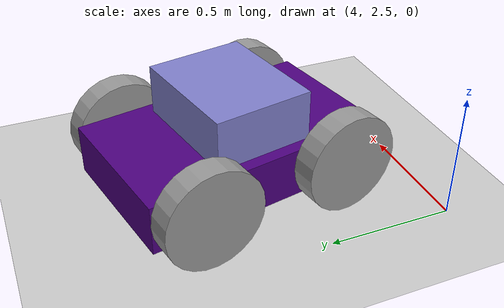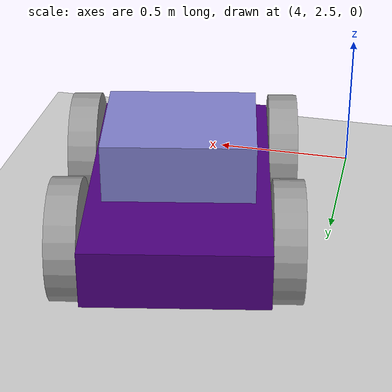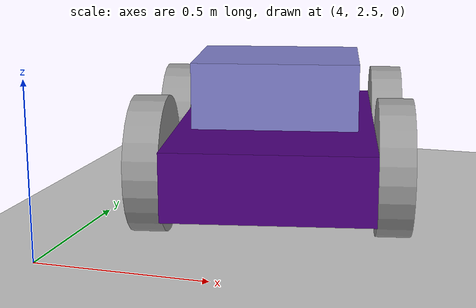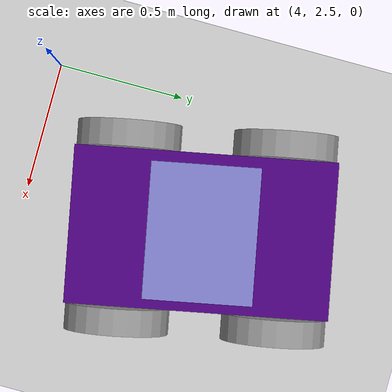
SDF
<sdf version="1.7">
 <world name="default">
  <model name="ground_plane">
   <static>1</static>
   <link name="link_gp">
    <collision name="collision">
     <geometry><plane><normal>0 0 1</normal><size>100 100</size></plane></geometry>
     <surface>
      <contact><collide_bitmask>65535</collide_bitmask></contact>
      <friction><ode><mu>100</mu><mu2>50</mu2></ode></friction>
     </surface>
    </collision>
    <visual name="visual">
     <cast_shadows>0</cast_shadows>
     <geometry><plane><normal>0 0 1</normal><size>100 100</size></plane></geometry>
     <material>
      <script><uri>file://media/materials/scripts/gazebo.material</uri><name>Gazebo/Grey</name></script>
     </material>
    </visual>
   </link>
  </model>
  <model name="Robot_mh_clone">
   <link name="link_0">
    <inertial>
     <mass>1</mass>
     <inertia>
      <ixx>0.166667</ixx>
      <ixy>0</ixy>
      <ixz>0</ixz>
      <iyy>0.166667</iyy>
      <iyz>0</iyz>
      <izz>0.166667</izz>
     </inertia>
    </inertial>
    <pose>0.584798 0.160779 -0.013333 0 -0 0</pose>
    <visual name="visual">
     <geometry><box><size>1 0.6 0.2</size></box></geometry>
     <material>
      <lighting>1</lighting>
      <script><uri>file://media/materials/scripts/gazebo.material</uri><name>Gazebo/Grey</name></script>
      <shader type="pixel"><normal_map>__default__</normal_map></shader>
      <ambient>0.3 0 0.5 1</ambient>
      <diffuse>0.7 0.7 0.7 1</diffuse>
      <specular>0.01 0.01 0.01 1</specular>
      <emissive>0 0 0 1</emissive>
     </material>
    </visual>
    <collision name="collision">
     <geometry><box><size>1 0.6 0.2</size></box></geometry>
     <surface>
      <friction>
       <ode><mu>1</mu><mu2>1</mu2><fdir1>0 0 0</fdir1><slip1>0</slip1><slip2>0</slip2></ode>
       <torsional>
        <coefficient>1</coefficient>
        <patch_radius>0</patch_radius>
        <surface_radius>0</surface_radius>
        <use_patch_radius>1</use_patch_radius>
        <ode><slip>0</slip></ode>
       </torsional>
      </friction>
      <bounce><restitution_coefficient>0</restitution_coefficient><threshold>1e+06</threshold></bounce>
      <contact>
       <collide_without_contact>0</collide_without_contact>
       <collide_without_contact_bitmask>1</collide_without_contact_bitmask>
       <collide_bitmask>1</collide_bitmask>
       <ode>
        <soft_cfm>0</soft_cfm>
        <soft_erp>0.2</soft_erp>
        <kp>1e+13</kp>
        <kd>1</kd>
        <max_vel>0.01</max_vel>
        <min_depth>0</min_depth>
       </ode>
       <bullet>
        <split_impulse>1</split_impulse>
        <split_impulse_penetration_threshold>-0.01</split_impulse_penetration_threshold>
        <soft_cfm>0</soft_cfm>
        <soft_erp>0.2</soft_erp>
        <kp>1e+13</kp>
        <kd>1</kd>
       </bullet>
      </contact>
     </surface>
    </collision>
   </link>
   <link name="link_1">
    <inertial>
     <mass>1</mass>
     <inertia><ixx>0.145833</ixx><ixy>0</ixy><ixz>0</ixz><iyy>0.145833</iyy><iyz>0</iyz><izz>0.125</izz></inertia>
    </inertial>
    <pose>0.884798 0.510798 0.006667 0 -0 0</pose>
    <visual name="visual">
     <pose>0 0 0 1.5707 -0 0</pose>
     <geometry><cylinder><radius>0.2</radius><length>0.1</length></cylinder></geometry>
     <material>
      <lighting>1</lighting>
      <script><uri>file://media/materials/scripts/gazebo.material</uri><name>Gazebo/Grey</name></script>
      <shader type="pixel"><normal_map>__default__</normal_map></shader>
      <ambient>0 0 0 1</ambient>
      <diffuse>0.7 0.7 0.7 1</diffuse>
      <specular>0.01 0.01 0.01 1</specular>
      <emissive>0 0 0 1</emissive>
     </material>
    </visual>
    <collision name="collision">
     <pose>0 0 0 1.5707 -0 0</pose>
     <geometry><cylinder><radius>0.2</radius><length>0.1</length></cylinder></geometry>
     <surface>
      <friction>
       <ode><mu>1</mu><mu2>1</mu2><fdir1>0 0 0</fdir1><slip1>0</slip1><slip2>0</slip2></ode>
       <torsional>
        <coefficient>1</coefficient>
        <patch_radius>0</patch_radius>
        <surface_radius>0</surface_radius>
        <use_patch_radius>1</use_patch_radius>
        <ode><slip>0</slip></ode>
       </torsional>
      </friction>
      <bounce><restitution_coefficient>0</restitution_coefficient><threshold>1e+06</threshold></bounce>
      <contact>
       <collide_without_contact>0</collide_without_contact>
       <collide_without_contact_bitmask>1</collide_without_contact_bitmask>
       <collide_bitmask>1</collide_bitmask>
       <ode>
        <soft_cfm>0</soft_cfm>
        <soft_erp>0.2</soft_erp>
        <kp>1e+13</kp>
        <kd>1</kd>
        <max_vel>0.01</max_vel>
        <min_depth>0</min_depth>
       </ode>
       <bullet>
        <split_impulse>1</split_impulse>
        <split_impulse_penetration_threshold>-0.01</split_impulse_penetration_threshold>
        <soft_cfm>0</soft_cfm>
        <soft_erp>0.2</soft_erp>
        <kp>1e+13</kp>
        <kd>1</kd>
       </bullet>
      </contact>
     </surface>
    </collision>
   </link>
   <link name="link_1_clone">
    <inertial>
     <mass>1</mass>
     <inertia><ixx>0.145833</ixx><ixy>0</ixy><ixz>0</ixz><iyy>0.145833</iyy><iyz>0</iyz><izz>0.125</izz></inertia>
    </inertial>
    <pose>0.884798 -0.189241 0.006667 0 -0 0</pose>
    <visual name="visual">
     <pose>0 0 0 1.5707 -0 0</pose>
     <geometry><cylinder><radius>0.2</radius><length>0.1</length></cylinder></geometry>
     <material>
      <lighting>1</lighting>
      <script><uri>file://media/materials/scripts/gazebo.material</uri><name>Gazebo/Grey</name></script>
      <shader type="pixel"><normal_map>__default__</normal_map></shader>
      <ambient>0 0 0 1</ambient>
      <diffuse>0.7 0.7 0.7 1</diffuse>
      <specular>0.01 0.01 0.01 1</specular>
      <emissive>0 0 0 1</emissive>
     </material>
    </visual>
    <collision name="collision">
     <pose>0 0 0 1.5707 -0 0</pose>
     <geometry><cylinder><radius>0.2</radius><length>0.1</length></cylinder></geometry>
     <surface>
      <friction>
       <ode><mu>1</mu><mu2>1</mu2><fdir1>0 0 0</fdir1><slip1>0</slip1><slip2>0</slip2></ode>
       <torsional>
        <coefficient>1</coefficient>
        <patch_radius>0</patch_radius>
        <surface_radius>0</surface_radius>
        <use_patch_radius>1</use_patch_radius>
        <ode><slip>0</slip></ode>
       </torsional>
      </friction>
      <bounce><restitution_coefficient>0</restitution_coefficient><threshold>1e+06</threshold></bounce>
      <contact>
       <collide_without_contact>0</collide_without_contact>
       <collide_without_contact_bitmask>1</collide_without_contact_bitmask>
       <collide_bitmask>1</collide_bitmask>
       <ode>
        <soft_cfm>0</soft_cfm>
        <soft_erp>0.2</soft_erp>
        <kp>1e+13</kp>
        <kd>1</kd>
        <max_vel>0.01</max_vel>
        <min_depth>0</min_depth>
       </ode>
       <bullet>
        <split_impulse>1</split_impulse>
        <split_impulse_penetration_threshold>-0.01</split_impulse_penetration_threshold>
        <soft_cfm>0</soft_cfm>
        <soft_erp>0.2</soft_erp>
        <kp>1e+13</kp>
        <kd>1</kd>
       </bullet>
      </contact>
     </surface>
    </collision>
   </link>
   <link name="link_1_clone_0">
    <inertial>
     <mass>1</mass>
     <inertia><ixx>0.145833</ixx><ixy>0</ixy><ixz>0</ixz><iyy>0.145833</iyy><iyz>0</iyz><izz>0.125</izz></inertia>
    </inertial>
    <pose>0.284798 -0.189241 0.006667 0 -0 0</pose>
    <visual name="visual">
     <pose>0 0 0 1.5707 -0 0</pose>
     <geometry><cylinder><radius>0.2</radius><length>0.1</length></cylinder></geometry>
     <material>
      <lighting>1</lighting>
      <script><uri>file://media/materials/scripts/gazebo.material</uri><name>Gazebo/Grey</name></script>
      <shader type="pixel"><normal_map>__default__</normal_map></shader>
      <ambient>0 0 0 1</ambient>
      <diffuse>0.7 0.7 0.7 1</diffuse>
      <specular>0.01 0.01 0.01 1</specular>
      <emissive>0 0 0 1</emissive>
     </material>
    </visual>
    <collision name="collision">
     <pose>0 0 0 1.5707 -0 0</pose>
     <geometry><cylinder><radius>0.2</radius><length>0.1</length></cylinder></geometry>
     <surface>
      <friction>
       <ode><mu>1</mu><mu2>1</mu2><fdir1>0 0 0</fdir1><slip1>0</slip1><slip2>0</slip2></ode>
       <torsional>
        <coefficient>1</coefficient>
        <patch_radius>0</patch_radius>
        <surface_radius>0</surface_radius>
        <use_patch_radius>1</use_patch_radius>
        <ode><slip>0</slip></ode>
       </torsional>
      </friction>
      <bounce><restitution_coefficient>0</restitution_coefficient><threshold>1e+06</threshold></bounce>
      <contact>
       <collide_without_contact>0</collide_without_contact>
       <collide_without_contact_bitmask>1</collide_without_contact_bitmask>
       <collide_bitmask>1</collide_bitmask>
       <ode>
        <soft_cfm>0</soft_cfm>
        <soft_erp>0.2</soft_erp>
        <kp>1e+13</kp>
        <kd>1</kd>
        <max_vel>0.01</max_vel>
        <min_depth>0</min_depth>
       </ode>
       <bullet>
        <split_impulse>1</split_impulse>
        <split_impulse_penetration_threshold>-0.01</split_impulse_penetration_threshold>
        <soft_cfm>0</soft_cfm>
        <soft_erp>0.2</soft_erp>
        <kp>1e+13</kp>
        <kd>1</kd>
       </bullet>
      </contact>
     </surface>
    </collision>
   </link>
   <link name="link_1_clone_1">
    <inertial>
     <mass>1</mass>
     <inertia><ixx>0.145833</ixx><ixy>0</ixy><ixz>0</ixz><iyy>0.145833</iyy><iyz>0</iyz><izz>0.125</izz></inertia>
    </inertial>
    <pose>0.284798 0.510798 0.006667 0 -0 0</pose>
    <visual name="visual">
     <pose>0 0 0 1.5707 -0 0</pose>
     <geometry><cylinder><radius>0.2</radius><length>0.1</length></cylinder></geometry>
     <material>
      <lighting>1</lighting>
      <script><uri>file://media/materials/scripts/gazebo.material</uri><name>Gazebo/Grey</name></script>
      <shader type="pixel"><normal_map>__default__</normal_map></shader>
      <ambient>0 0 0 1</ambient>
      <diffuse>0.7 0.7 0.7 1</diffuse>
      <specular>0.01 0.01 0.01 1</specular>
      <emissive>0 0 0 1</emissive>
     </material>
    </visual>
    <collision name="collision">
     <pose>0 0 0 1.5707 -0 0</pose>
     <geometry><cylinder><radius>0.2</radius><length>0.1</length></cylinder></geometry>
     <surface>
      <friction>
       <ode><mu>1</mu><mu2>1</mu2><fdir1>0 0 0</fdir1><slip1>0</slip1><slip2>0</slip2></ode>
       <torsional>
        <coefficient>1</coefficient>
        <patch_radius>0</patch_radius>
        <surface_radius>0</surface_radius>
        <use_patch_radius>1</use_patch_radius>
        <ode><slip>0</slip></ode>
       </torsional>
      </friction>
      <bounce><restitution_coefficient>0</restitution_coefficient><threshold>1e+06</threshold></bounce>
      <contact>
       <collide_without_contact>0</collide_without_contact>
       <collide_without_contact_bitmask>1</collide_without_contact_bitmask>
       <collide_bitmask>1</collide_bitmask>
       <ode>
        <soft_cfm>0</soft_cfm>
        <soft_erp>0.2</soft_erp>
        <kp>1e+13</kp>
        <kd>1</kd>
        <max_vel>0.01</max_vel>
        <min_depth>0</min_depth>
       </ode>
       <bullet>
        <split_impulse>1</split_impulse>
        <split_impulse_penetration_threshold>-0.01</split_impulse_penetration_threshold>
        <soft_cfm>0</soft_cfm>
        <soft_erp>0.2</soft_erp>
        <kp>1e+13</kp>
        <kd>1</kd>
       </bullet>
      </contact>
     </surface>
    </collision>
   </link>
   <link name="link_3">
    <inertial>
     <mass>1</mass>
     <inertia>
      <ixx>0.166667</ixx>
      <ixy>0</ixy>
      <ixz>0</ixz>
      <iyy>0.166667</iyy>
      <iyz>0</iyz>
      <izz>0.166667</izz>
     </inertia>
    </inertial>
    <pose>0.584798 0.160779 0.186667 0 -0 0</pose>
    <visual name="visual">
     <geometry><box><size>0.4 0.5 0.2</size></box></geometry>
     <material>
      <lighting>1</lighting>
      <script><uri>file://media/materials/scripts/gazebo.material</uri><name>Gazebo/Grey</name></script>
      <shader type="pixel"><normal_map>__default__</normal_map></shader>
      <ambient>0.5 0.5 0.8 1</ambient>
      <diffuse>0.7 0.7 0.7 1</diffuse>
      <specular>0.01 0.01 0.01 1</specular>
      <emissive>0 0 0 1</emissive>
     </material>
    </visual>
    <collision name="collision">
     <geometry><box><size>0.4 0.5 0.2</size></box></geometry>
     <surface>
      <friction>
       <ode><mu>1</mu><mu2>1</mu2><fdir1>0 0 0</fdir1><slip1>0</slip1><slip2>0</slip2></ode>
       <torsional>
        <coefficient>1</coefficient>
        <patch_radius>0</patch_radius>
        <surface_radius>0</surface_radius>
        <use_patch_radius>1</use_patch_radius>
        <ode><slip>0</slip></ode>
       </torsional>
      </friction>
      <bounce><restitution_coefficient>0</restitution_coefficient><threshold>1e+06</threshold></bounce>
      <contact>
       <collide_without_contact>0</collide_without_contact>
       <collide_without_contact_bitmask>1</collide_without_contact_bitmask>
       <collide_bitmask>1</collide_bitmask>
       <ode>
        <soft_cfm>0</soft_cfm>
        <soft_erp>0.2</soft_erp>
        <kp>1e+13</kp>
        <kd>1</kd>
        <max_vel>0.01</max_vel>
        <min_depth>0</min_depth>
       </ode>
       <bullet>
        <split_impulse>1</split_impulse>
        <split_impulse_penetration_threshold>-0.01</split_impulse_penetration_threshold>
        <soft_cfm>0</soft_cfm>
        <soft_erp>0.2</soft_erp>
        <kp>1e+13</kp>
        <kd>1</kd>
       </bullet>
      </contact>
     </surface>
    </collision>
   </link>
   <joint name="link_0_JOINT_1" type="revolute">
    <parent>link_0</parent>
    <child>link_1</child>
    <axis>
     <xyz>0 1 0</xyz>
     <limit>
      <lower>-1.79769e+308</lower>
      <upper>1.79769e+308</upper>
      <effort>-1</effort>
      <velocity>-1</velocity>
     </limit>
     <dynamics>
      <spring_reference>0</spring_reference>
      <spring_stiffness>0</spring_stiffness>
      <damping>0</damping>
      <friction>0</friction>
     </dynamics>
    </axis>
    <physics>
     <ode><limit><cfm>0</cfm><erp>0.2</erp></limit><suspension><cfm>0</cfm><erp>0.2</erp></suspension></ode>
    </physics>
   </joint>
   <joint name="link_0_JOINT_2" type="revolute">
    <parent>link_0</parent>
    <child>link_1_clone</child>
    <axis>
     <xyz>0 1 0</xyz>
     <limit>
      <lower>-1.79769e+308</lower>
      <upper>1.79769e+308</upper>
      <effort>-1</effort>
      <velocity>-1</velocity>
     </limit>
     <dynamics>
      <spring_reference>0</spring_reference>
      <spring_stiffness>0</spring_stiffness>
      <damping>0</damping>
      <friction>0</friction>
     </dynamics>
    </axis>
    <physics>
     <ode><limit><cfm>0</cfm><erp>0.2</erp></limit><suspension><cfm>0</cfm><erp>0.2</erp></suspension></ode>
    </physics>
   </joint>
   <joint name="link_0_JOINT_3" type="revolute">
    <parent>link_0</parent>
    <child>link_1_clone_0</child>
    <axis>
     <xyz>0 1 0</xyz>
     <limit>
      <lower>-1.79769e+308</lower>
      <upper>1.79769e+308</upper>
      <effort>-1</effort>
      <velocity>-1</velocity>
     </limit>
     <dynamics>
      <spring_reference>0</spring_reference>
      <spring_stiffness>0</spring_stiffness>
      <damping>0</damping>
      <friction>0</friction>
     </dynamics>
    </axis>
    <physics>
     <ode><limit><cfm>0</cfm><erp>0.2</erp></limit><suspension><cfm>0</cfm><erp>0.2</erp></suspension></ode>
    </physics>
   </joint>
   <joint name="link_0_JOINT_4" type="revolute">
    <parent>link_0</parent>
    <child>link_1_clone_1</child>
    <axis>
     <xyz>0 1 0</xyz>
     <limit>
      <lower>-1.79769e+308</lower>
      <upper>1.79769e+308</upper>
      <effort>-1</effort>
      <velocity>-1</velocity>
     </limit>
     <dynamics>
      <spring_reference>0</spring_reference>
      <spring_stiffness>0</spring_stiffness>
      <damping>0</damping>
      <friction>0</friction>
     </dynamics>
    </axis>
    <physics>
     <ode><limit><cfm>0</cfm><erp>0.2</erp></limit><suspension><cfm>0</cfm><erp>0.2</erp></suspension></ode>
    </physics>
   </joint>
   <joint name="link_0_JOINT_5" type="fixed">
    <parent>link_0</parent>
    <child>link_3</child>
    <physics>
     <ode><limit><cfm>0</cfm><erp>0.2</erp></limit><suspension><cfm>0</cfm><erp>0.2</erp></suspension></ode>
    </physics>
   </joint>
   <static>0</static>
   <pose>4.22452 3.75778 0.2 0 0 -1.37578</pose>
  </model>
 </world>
</sdf>
